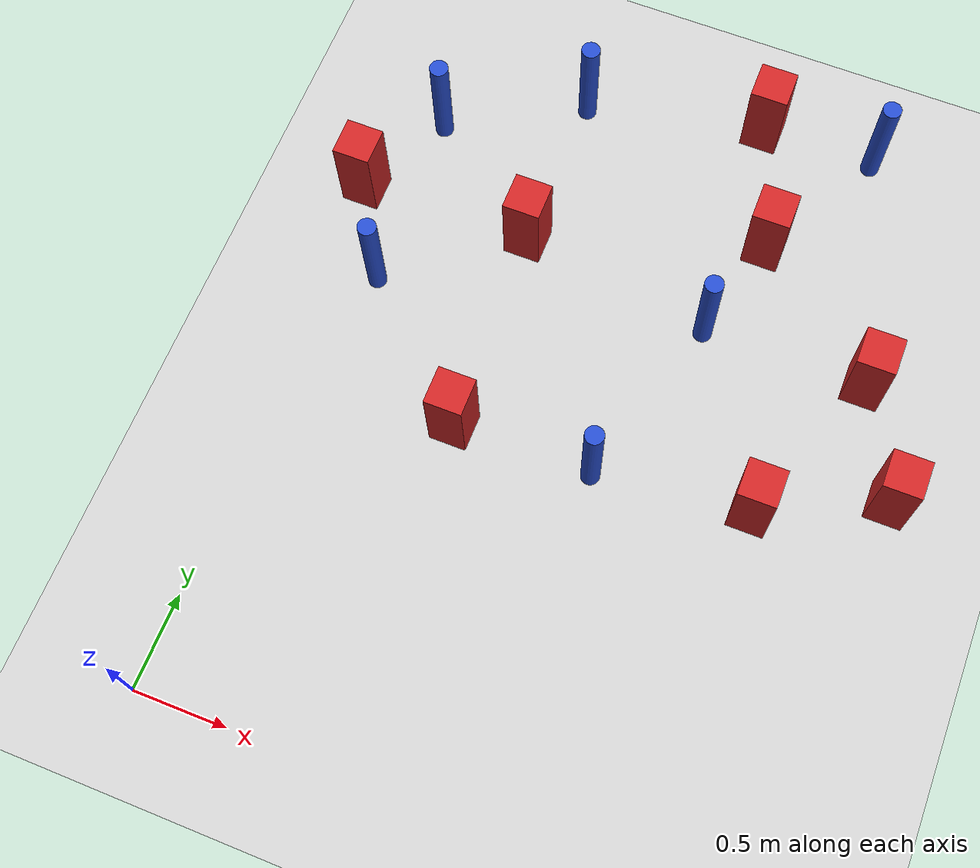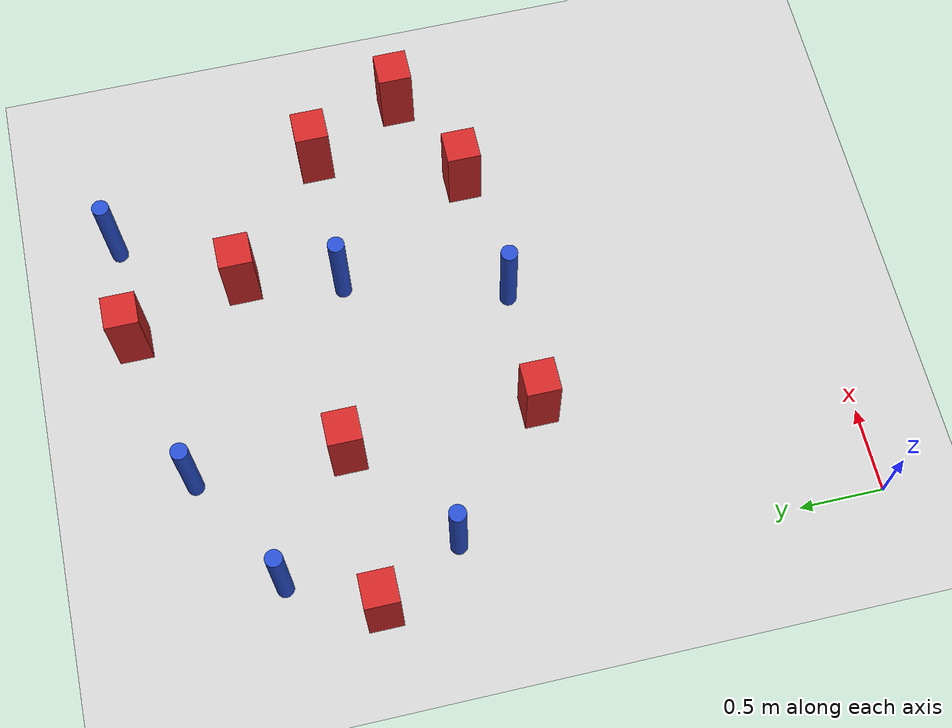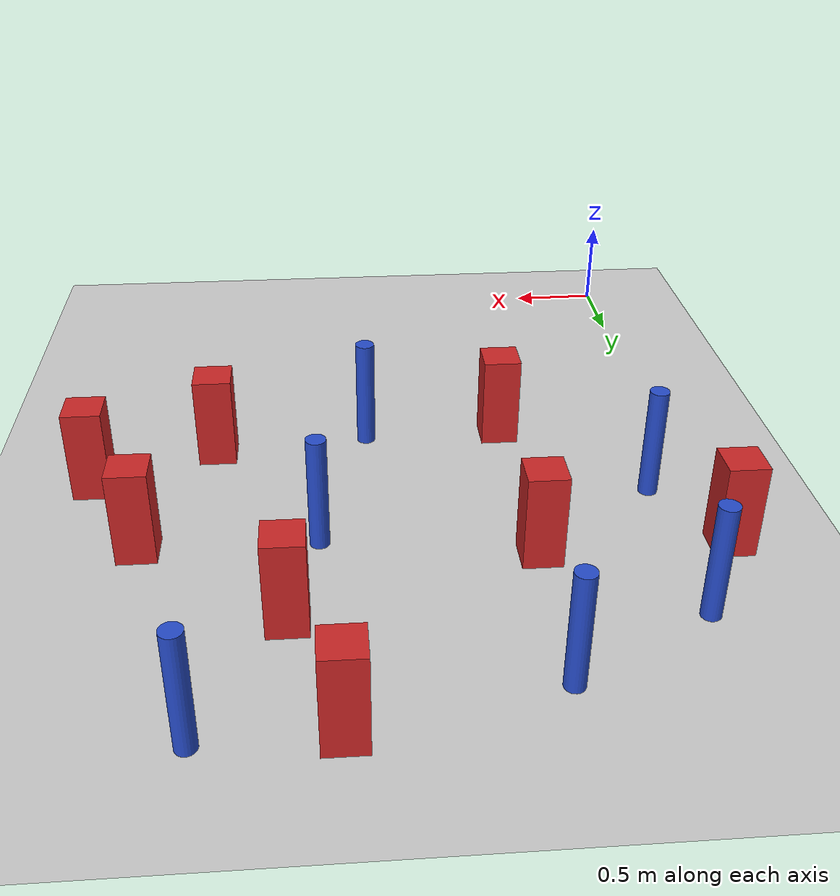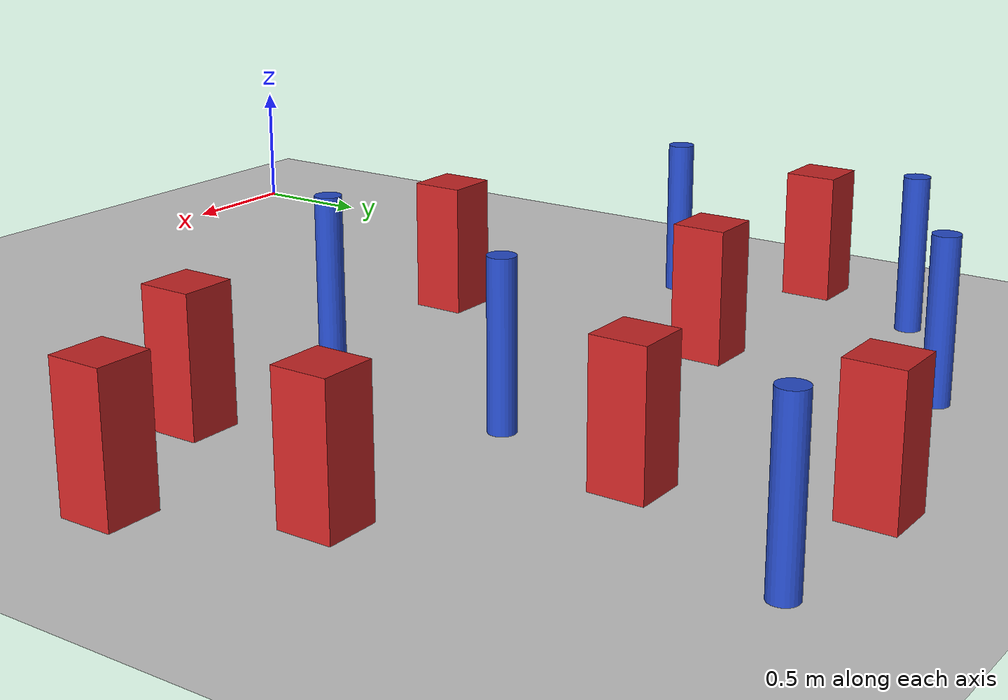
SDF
<sdf version="1.6">
 <world name="default">
  <model name="ground_plane">
   <static>1</static>
   <link name="link">
    <collision name="collision">
     <geometry><plane><normal>0 0 1</normal><size>100 100</size></plane></geometry>
     <surface><friction><ode><mu>100</mu><mu2>50</mu2></ode></friction></surface>
    </collision>
    <visual name="visual">
     <cast_shadows>0</cast_shadows>
     <geometry><plane><normal>0 0 1</normal><size>100 100</size></plane></geometry>
     <material>
      <ambient>1.0 1.0 1.0 1.0</ambient>
      <diffuse>0.8 0.8 0.8 1.0</diffuse>
      <specular>0.01 0.01 0.01 1.000000</specular>
     </material>
    </visual>
   </link>
  </model>
  <model name="square_post_obstacle10">
   <static>true</static>
   <pose>0.886683040819 2.95158349716 -6.11067671241e-07 -5.50515727128e-06 -8.79689657224e-07 2.37013304536e-05</pose>
   <link name="link">
    <pose>0 0 0.25 0 -0 0</pose>
    <inertial>
     <mass>100</mass>
     <inertia>
      <ixx>0.166667</ixx>
      <ixy>0</ixy>
      <ixz>0</ixz>
      <iyy>0.166667</iyy>
      <iyz>0</iyz>
      <izz>0.166667</izz>
     </inertia>
    </inertial>
    <collision name="collision"><geometry><box><size>.2 .2 .5</size></box></geometry></collision>
    <visual name="visual">
     <geometry><box><size>.2 .2 .5</size></box></geometry>
     <material>
      <script><name>Gazebo/Red</name><uri>file://media/materials/scripts/gazebo.material</uri></script>
     </material>
    </visual>
   </link>
  </model>
  <model name="pole_obstacle19">
   <static>true</static>
   <pose>1.94640654275 2.77484814485 -9.47619616065e-06 5.49618799737e-07 2.36310414062e-07 -1.55090534798e-07</pose>
   <link name="link">
    <pose>0 0 0.3 0 -0 0</pose>
    <inertial>
     <mass>1</mass>
     <inertia><ixx>0.145833</ixx><ixy>0</ixy><ixz>0</ixz><iyy>0.145833</iyy><iyz>0</iyz><izz>0.125</izz></inertia>
    </inertial>
    <collision name="collision">
     <geometry><cylinder><radius>0.05</radius><length>.6</length></cylinder></geometry>
    </collision>
    <visual name="visual">
     <geometry><cylinder><radius>0.05</radius><length>.6</length></cylinder></geometry>
     <material>
      <script><name>Gazebo/Blue</name><uri>file://media/materials/scripts/gazebo.material</uri></script>
     </material>
    </visual>
   </link>
  </model>
  <model name="square_post_obstacle29">
   <static>true</static>
   <pose>-0.0567404727625 2.93419672478 -6.11067671241e-07 -5.50515727128e-06 -8.79689657224e-07 2.37013304536e-05</pose>
   <link name="link">
    <pose>0 0 0.25 0 -0 0</pose>
    <inertial>
     <mass>100</mass>
     <inertia>
      <ixx>0.166667</ixx>
      <ixy>0</ixy>
      <ixz>0</ixz>
      <iyy>0.166667</iyy>
      <iyz>0</iyz>
      <izz>0.166667</izz>
     </inertia>
    </inertial>
    <collision name="collision"><geometry><box><size>.2 .2 .5</size></box></geometry></collision>
    <visual name="visual">
     <geometry><box><size>.2 .2 .5</size></box></geometry>
     <material>
      <script><name>Gazebo/Red</name><uri>file://media/materials/scripts/gazebo.material</uri></script>
     </material>
    </visual>
   </link>
  </model>
  <model name="square_post_obstacle32">
   <static>true</static>
   <pose>3.12144091782 2.20998211687 -6.11067671241e-07 -5.50515727128e-06 -8.79689657224e-07 2.37013304536e-05</pose>
   <link name="link">
    <pose>0 0 0.25 0 -0 0</pose>
    <inertial>
     <mass>100</mass>
     <inertia>
      <ixx>0.166667</ixx>
      <ixy>0</ixy>
      <ixz>0</ixz>
      <iyy>0.166667</iyy>
      <iyz>0</iyz>
      <izz>0.166667</izz>
     </inertia>
    </inertial>
    <collision name="collision"><geometry><box><size>.2 .2 .5</size></box></geometry></collision>
    <visual name="visual">
     <geometry><box><size>.2 .2 .5</size></box></geometry>
     <material>
      <script><name>Gazebo/Red</name><uri>file://media/materials/scripts/gazebo.material</uri></script>
     </material>
    </visual>
   </link>
  </model>
  <model name="square_post_obstacle57">
   <static>true</static>
   <pose>2.09698442097 3.36153233172 -6.11067671241e-07 -5.50515727128e-06 -8.79689657224e-07 2.37013304536e-05</pose>
   <link name="link">
    <pose>0 0 0.25 0 -0 0</pose>
    <inertial>
     <mass>100</mass>
     <inertia>
      <ixx>0.166667</ixx>
      <ixy>0</ixy>
      <ixz>0</ixz>
      <iyy>0.166667</iyy>
      <iyz>0</iyz>
      <izz>0.166667</izz>
     </inertia>
    </inertial>
    <collision name="collision"><geometry><box><size>.2 .2 .5</size></box></geometry></collision>
    <visual name="visual">
     <geometry><box><size>.2 .2 .5</size></box></geometry>
     <material>
      <script><name>Gazebo/Red</name><uri>file://media/materials/scripts/gazebo.material</uri></script>
     </material>
    </visual>
   </link>
  </model>
  <model name="pole_obstacle83">
   <static>true</static>
   <pose>2.48656387706 4.06005906577 -9.47619616065e-06 5.49618799738e-07 2.3631041406e-07 -1.55090534801e-07</pose>
   <link name="link">
    <pose>0 0 0.3 0 -0 0</pose>
    <inertial>
     <mass>1</mass>
     <inertia><ixx>0.145833</ixx><ixy>0</ixy><ixz>0</ixz><iyy>0.145833</iyy><iyz>0</iyz><izz>0.125</izz></inertia>
    </inertial>
    <collision name="collision">
     <geometry><cylinder><radius>0.05</radius><length>.6</length></cylinder></geometry>
    </collision>
    <visual name="visual">
     <geometry><cylinder><radius>0.05</radius><length>.6</length></cylinder></geometry>
     <material>
      <script><name>Gazebo/Blue</name><uri>file://media/materials/scripts/gazebo.material</uri></script>
     </material>
    </visual>
   </link>
  </model>
  <model name="pole_obstacle95">
   <static>true</static>
   <pose>0.194821865127 3.44176154237 -9.47619616065e-06 5.49618799738e-07 2.36310414068e-07 -1.55090534794e-07</pose>
   <link name="link">
    <pose>0 0 0.3 0 -0 0</pose>
    <inertial>
     <mass>1</mass>
     <inertia><ixx>0.145833</ixx><ixy>0</ixy><ixz>0</ixz><iyy>0.145833</iyy><iyz>0</iyz><izz>0.125</izz></inertia>
    </inertial>
    <collision name="collision">
     <geometry><cylinder><radius>0.05</radius><length>.6</length></cylinder></geometry>
    </collision>
    <visual name="visual">
     <geometry><cylinder><radius>0.05</radius><length>.6</length></cylinder></geometry>
     <material>
      <script><name>Gazebo/Blue</name><uri>file://media/materials/scripts/gazebo.material</uri></script>
     </material>
    </visual>
   </link>
  </model>
  <model name="pole_obstacle109">
   <static>true</static>
   <pose>0.220281164585 2.44343734604 -9.4761961606e-06 5.49618799729e-07 2.36310413995e-07 -1.55090534826e-07</pose>
   <link name="link">
    <pose>0 0 0.3 0 -0 0</pose>
    <inertial>
     <mass>1</mass>
     <inertia><ixx>0.145833</ixx><ixy>0</ixy><ixz>0</ixz><iyy>0.145833</iyy><iyz>0</iyz><izz>0.125</izz></inertia>
    </inertial>
    <collision name="collision">
     <geometry><cylinder><radius>0.05</radius><length>.6</length></cylinder></geometry>
    </collision>
    <visual name="visual">
     <geometry><cylinder><radius>0.05</radius><length>.6</length></cylinder></geometry>
     <material>
      <script><name>Gazebo/Blue</name><uri>file://media/materials/scripts/gazebo.material</uri></script>
     </material>
    </visual>
   </link>
  </model>
  <model name="square_post_obstacle133">
   <static>true</static>
   <pose>2.49105647197 1.919635386 -6.11067671241e-07 -5.50515727128e-06 -8.79689657224e-07 2.37013304536e-05</pose>
   <link name="link">
    <pose>0 0 0.25 0 -0 0</pose>
    <inertial>
     <mass>100</mass>
     <inertia>
      <ixx>0.166667</ixx>
      <ixy>0</ixy>
      <ixz>0</ixz>
      <iyy>0.166667</iyy>
      <iyz>0</iyz>
      <izz>0.166667</izz>
     </inertia>
    </inertial>
    <collision name="collision"><geometry><box><size>.2 .2 .5</size></box></geometry></collision>
    <visual name="visual">
     <geometry><box><size>.2 .2 .5</size></box></geometry>
     <material>
      <script><name>Gazebo/Red</name><uri>file://media/materials/scripts/gazebo.material</uri></script>
     </material>
    </visual>
   </link>
  </model>
  <model name="pole_obstacle163">
   <static>true</static>
   <pose>1.67173122236 1.8161475873 -9.47619616065e-06 5.49618799737e-07 2.36310414065e-07 -1.55090534798e-07</pose>
   <link name="link">
    <pose>0 0 0.3 0 -0 0</pose>
    <inertial>
     <mass>1</mass>
     <inertia><ixx>0.145833</ixx><ixy>0</ixy><ixz>0</ixz><iyy>0.145833</iyy><iyz>0</iyz><izz>0.125</izz></inertia>
    </inertial>
    <collision name="collision">
     <geometry><cylinder><radius>0.05</radius><length>.6</length></cylinder></geometry>
    </collision>
    <visual name="visual">
     <geometry><cylinder><radius>0.05</radius><length>.6</length></cylinder></geometry>
     <material>
      <script><name>Gazebo/Blue</name><uri>file://media/materials/scripts/gazebo.material</uri></script>
     </material>
    </visual>
   </link>
  </model>
  <model name="pole_obstacle181">
   <static>true</static>
   <pose>0.900301745311 3.83818215545 -9.47619616065e-06 5.49618799737e-07 2.36310414066e-07 -1.55090534797e-07</pose>
   <link name="link">
    <pose>0 0 0.3 0 -0 0</pose>
    <inertial>
     <mass>1</mass>
     <inertia><ixx>0.145833</ixx><ixy>0</ixy><ixz>0</ixz><iyy>0.145833</iyy><iyz>0</iyz><izz>0.125</izz></inertia>
    </inertial>
    <collision name="collision">
     <geometry><cylinder><radius>0.05</radius><length>.6</length></cylinder></geometry>
    </collision>
    <visual name="visual">
     <geometry><cylinder><radius>0.05</radius><length>.6</length></cylinder></geometry>
     <material>
      <script><name>Gazebo/Blue</name><uri>file://media/materials/scripts/gazebo.material</uri></script>
     </material>
    </visual>
   </link>
  </model>
  <model name="square_post_obstacle188">
   <static>true</static>
   <pose>1.86351256091 4.05508486864 -6.11067671241e-07 -5.50515727128e-06 -8.79689657224e-07 2.37013304536e-05</pose>
   <link name="link">
    <pose>0 0 0.25 0 -0 0</pose>
    <inertial>
     <mass>100</mass>
     <inertia>
      <ixx>0.166667</ixx>
      <ixy>0</ixy>
      <ixz>0</ixz>
      <iyy>0.166667</iyy>
      <iyz>0</iyz>
      <izz>0.166667</izz>
     </inertia>
    </inertial>
    <collision name="collision"><geometry><box><size>.2 .2 .5</size></box></geometry></collision>
    <visual name="visual">
     <geometry><box><size>.2 .2 .5</size></box></geometry>
     <material>
      <script><name>Gazebo/Red</name><uri>file://media/materials/scripts/gazebo.material</uri></script>
     </material>
    </visual>
   </link>
  </model>
  <model name="square_post_obstacle193">
   <static>true</static>
   <pose>0.926591367105 1.81218351648 -6.11067671241e-07 -5.50515727128e-06 -8.79689657224e-07 2.37013304536e-05</pose>
   <link name="link">
    <pose>0 0 0.25 0 -0 0</pose>
    <inertial>
     <mass>100</mass>
     <inertia>
      <ixx>0.166667</ixx>
      <ixy>0</ixy>
      <ixz>0</ixz>
      <iyy>0.166667</iyy>
      <iyz>0</iyz>
      <izz>0.166667</izz>
     </inertia>
    </inertial>
    <collision name="collision"><geometry><box><size>.2 .2 .5</size></box></geometry></collision>
    <visual name="visual">
     <geometry><box><size>.2 .2 .5</size></box></geometry>
     <material>
      <script><name>Gazebo/Red</name><uri>file://media/materials/scripts/gazebo.material</uri></script>
     </material>
    </visual>
   </link>
  </model>
  <model name="square_post_obstacle197">
   <static>true</static>
   <pose>2.82539552481 2.77953758639 -6.11067671241e-07 -5.50515727128e-06 -8.79689657224e-07 2.37013304536e-05</pose>
   <link name="link">
    <pose>0 0 0.25 0 -0 0</pose>
    <inertial>
     <mass>100</mass>
     <inertia>
      <ixx>0.166667</ixx>
      <ixy>0</ixy>
      <ixz>0</ixz>
      <iyy>0.166667</iyy>
      <iyz>0</iyz>
      <izz>0.166667</izz>
     </inertia>
    </inertial>
    <collision name="collision"><geometry><box><size>.2 .2 .5</size></box></geometry></collision>
    <visual name="visual">
     <geometry><box><size>.2 .2 .5</size></box></geometry>
     <material>
      <script><name>Gazebo/Red</name><uri>file://media/materials/scripts/gazebo.material</uri></script>
     </material>
    </visual>
   </link>
  </model>
 </world>
</sdf>
